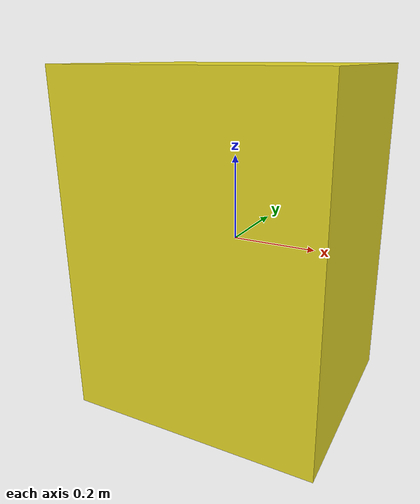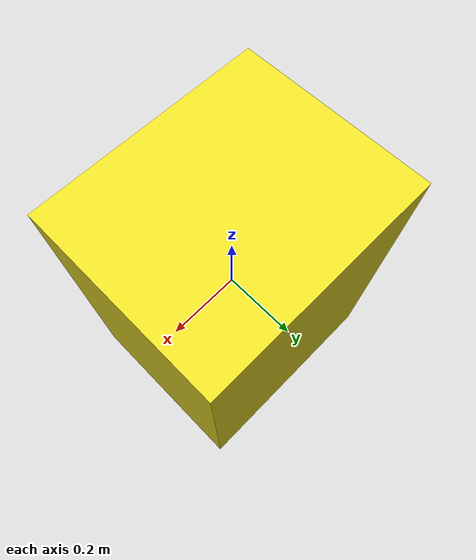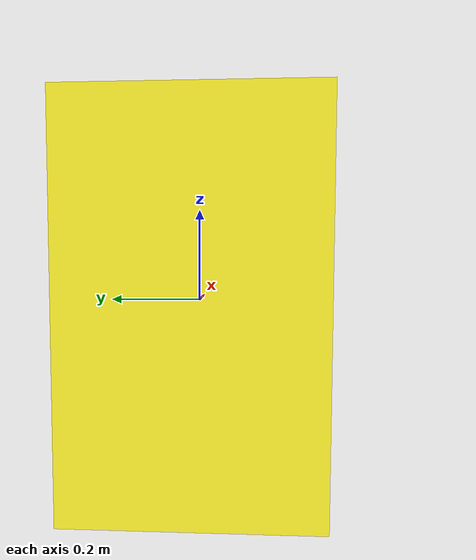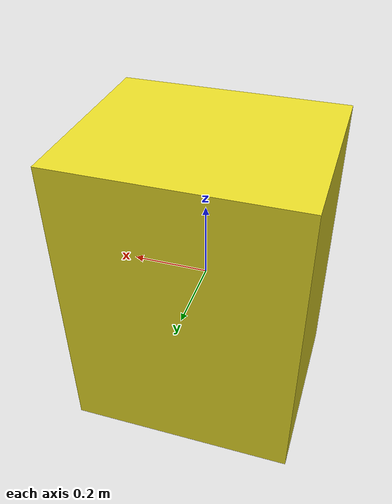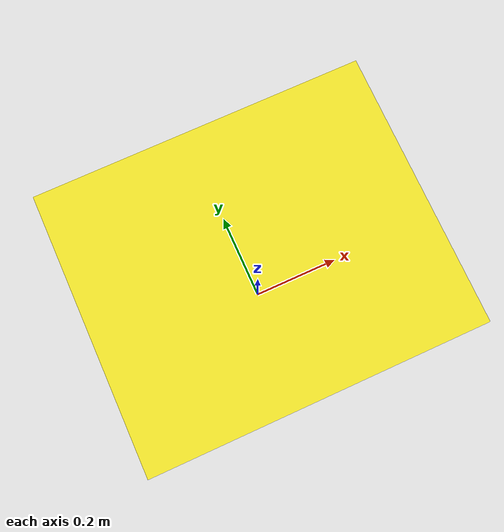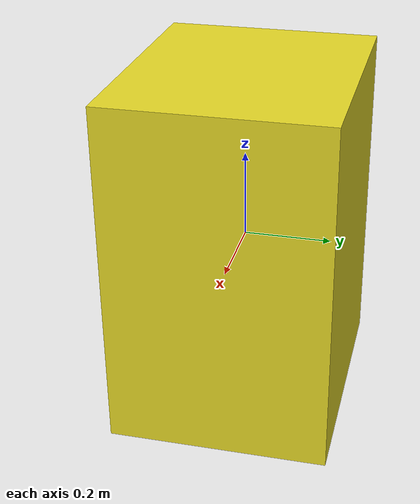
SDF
<?xml version="1.0" encoding="UTF-8"?>
<sdf version='1.4'>
  <model name="baggage_C_0.8">
      <static>true</static>
      <link name="link">
         <collision name="collision">
            <geometry>
               <box>
                  <size>0.6 0.5 0.8</size>
               </box>
            </geometry>
         </collision>
         <visual name="visual">
            <cast_shadows>false</cast_shadows>
            <geometry>
               <box>
                  <size>0.6 0.5 0.8</size>
               </box>
            </geometry>
            <material>
               <script>
                  <uri>file://media/materials/scripts/gazebo.material</uri>
                  <name>Gazebo/Yellow</name>
               </script>
            </material>
         </visual>
      </link>
  </model>
</sdf>
